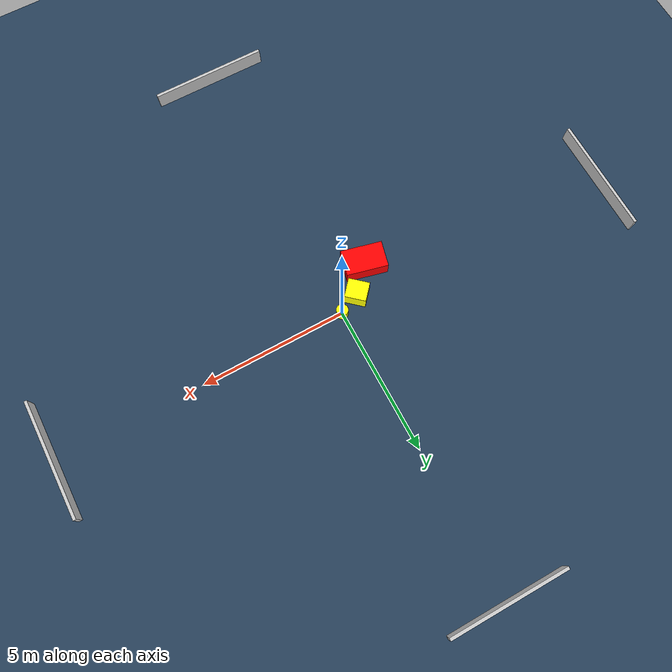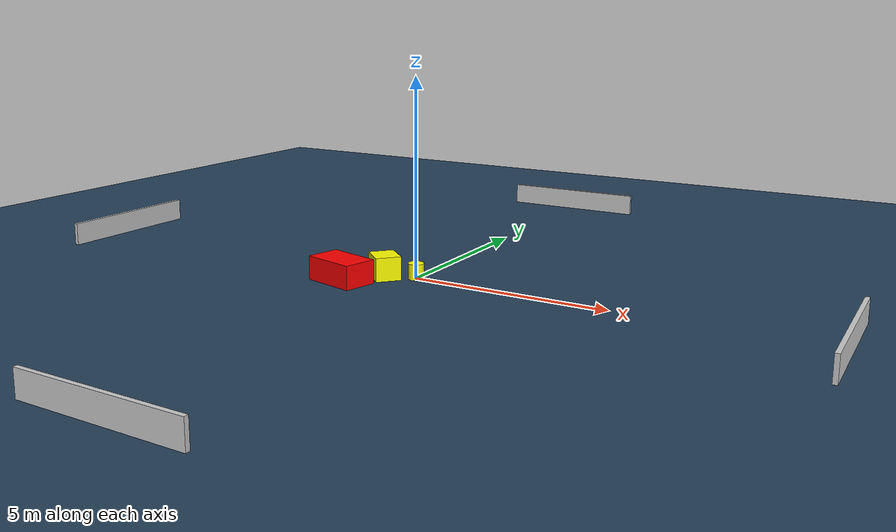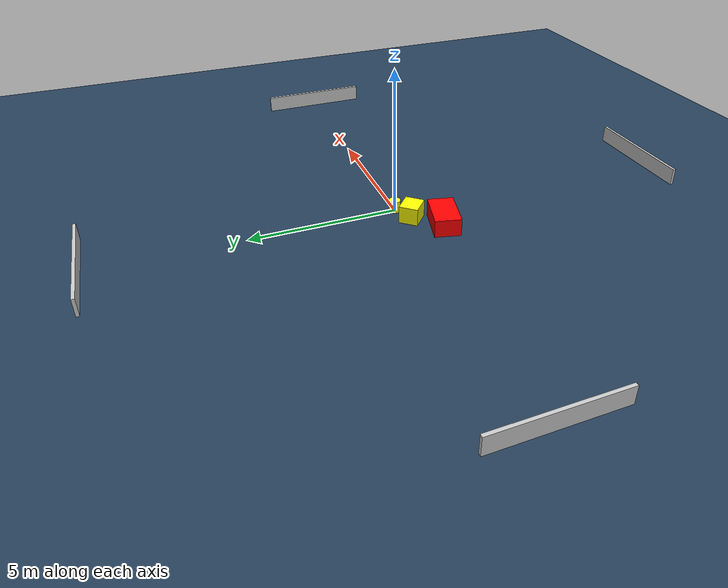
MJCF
<?xml version="1.0" ?>
<mujoco model="generated_environment">
  <option timestep="0.01" integrator="RK4" cone="elliptic"/>
  <default>
    <geom density="1"/>
  </default>
  <asset>
    <texture builtin="gradient" height="3072" name="skybox" rgb1="0.3 0.5 0.7" rgb2="0 0 0" type="skybox" width="512"/>
    <texture builtin="checker" height="300" name="groundplane" rgb1="0.2 0.3 0.4" rgb2="0.1 0.2 0.3" type="2d" width="300"/>
    <material name="groundplane" reflectance="0.2" texrepeat="5 5" texture="groundplane"/>
  </asset>
  <worldbody>
    <light dir="0 0 -1" directional="true" pos="0 0 1.5"/>
    <geom condim="3" friction="0.5 0.005 0.001" material="groundplane" name="floor" pos="0 0 0" size="0 0 0.05" type="plane"/>
    <body name="walls">
      <geom name="wall_1" condim="4" pos="-10.0 0.0 0.3" rgba="0.800000011920929 0.800000011920929 0.800000011920929 1.0" size="0.05 2.0 0.3" type="box"/>
      <geom name="wall_2" condim="4" pos="10.0 0.0 0.3" rgba="0.800000011920929 0.800000011920929 0.800000011920929 1.0" size="0.05 2.0 0.3" type="box"/>
      <geom name="wall_3" condim="4" pos="0.0 -10.0 0.3" rgba="0.800000011920929 0.800000011920929 0.800000011920929 1.0" size="2.0 0.05 0.3" type="box"/>
      <geom name="wall_4" condim="4" pos="0.0 10.0 0.3" rgba="0.800000011920929 0.800000011920929 0.800000011920929 1.0" size="2.0 0.05 0.3" type="box"/>
    </body>
    <body name="robot">
      <joint name="joint_x" type="slide" pos="0 0 0" axis="1 0 0"/>
      <joint name="joint_y" type="slide" pos="0 0 0" axis="0 1 0"/>
      <geom name="robot" type="cylinder" pos="0.0 0.0 0.2" size="0.2 0.2 0.0" mass="5.0" friction="1.0 0.005 0.0001" condim="4" rgba="1.0 1.0 0.0 1.0"/>
    </body>
    <body name="obstacle_1_movable">
      <geom name="obstacle_1_movable" condim="4" pos="-0.7176555010085575 -0.3194872479547631 0.3" euler="0 0 228.6129143631841" friction="0.0 0.005 0.001" rgba="1.0 1.0 0.0 1.0" size="0.3223462268216231 0.3569003541674713 0.3" type="box" mass="0.1"/>
      <joint type="free"/>
    </body>
    <body name="obstacle_2_static">
      <geom name="obstacle_2_static" condim="4" pos="-1.4471484905831384 -1.1580372127752103 0.3" euler="0 0 166.30329416753773" friction="0.0 0.005 0.001" rgba="1.0 0.0 0.0 1.0" size="0.6985449824849235 0.4360327400340546 0.3" type="box"/>
    </body>
  </worldbody>
  <actuator>
    <motor name="actuator_x" joint="joint_x" gear="1" ctrlrange="-1 1"/>
    <motor name="actuator_y" joint="joint_y" gear="1" ctrlrange="-1 1"/>
  </actuator>
</mujoco>
